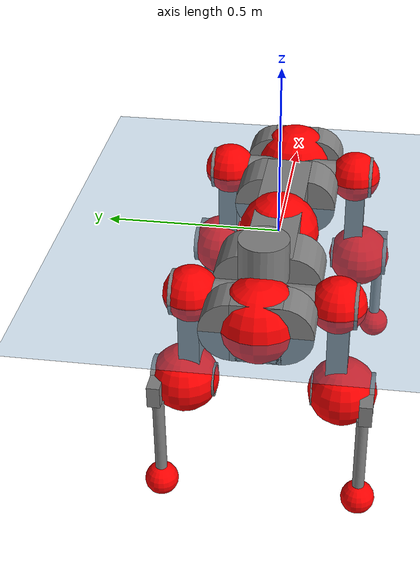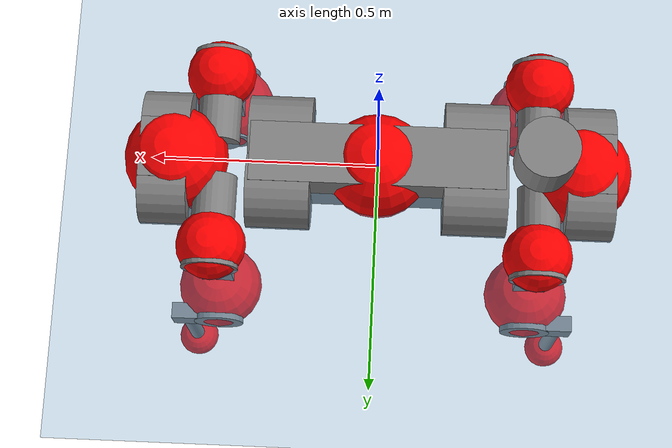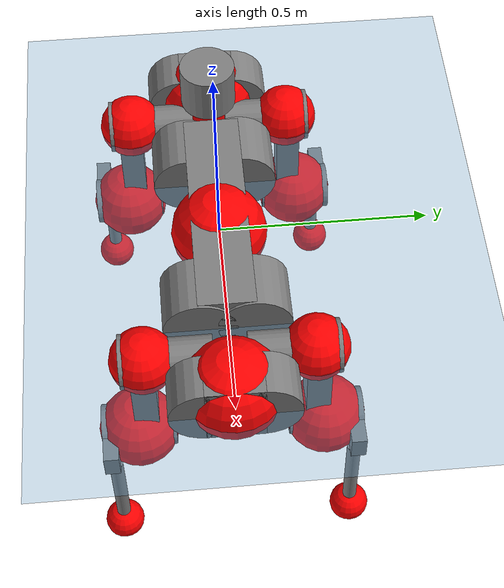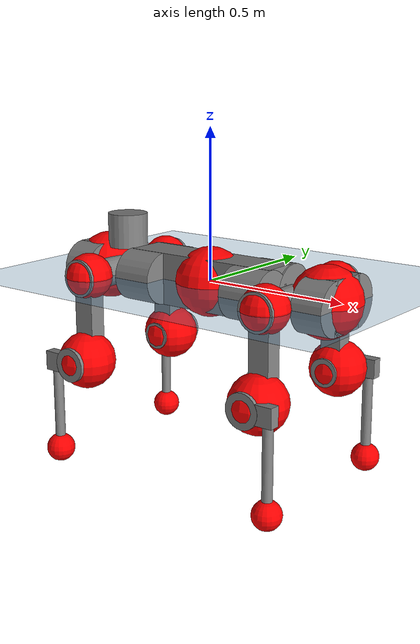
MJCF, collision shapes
<mujoco model="anymal_c">
  <compiler angle="radian" assetdir="assets" balanceinertia="true" inertiafromgeom="false"/>

  <option timestep="0.005" density="1.2" viscosity="2e-05"/>

  <size nkey="1"/>

  <visual>
    <quality shadowsize="8192"/>
    <map shadowclip="0.5"/>
  </visual>

  <default>
    <default class="/">
      <material specular="0" shininess="0.25"/>
      <geom contype="0" conaffinity="0" group="1" solref="-1000 -80"/>
      <site size="0.01 0.005 0.005" group="5"/>
      <general forcelimited="true" forcerange="-80 80" biastype="affine" gainprm="80" biasprm="0 -80 -2"/>
      <default class="anymal_c">
        <joint armature="0.01" damping="0.01" frictionloss="0.1"/>
        <default class="visual">
          <geom type="mesh" group="2"/>
          <default class="visual_zflip"/>
        </default>
        <default class="collision">
          <geom type="cylinder" group="3"/>
          <default class="foot">
            <geom size="0.03 0 0" type="sphere" condim="6" priority="1" friction="0.8 0.02 0.01" solimp="0.015 1 0.03"/>
          </default>
        </default>
      </default>
      <default class="reward_collision_sphere">
        <geom group="5" rgba="1 0 0 1"/>
      </default>
    </default>
  </default>

  <asset>
    <texture type="skybox" colorspace="auto" name="//unnamed_texture_0" builtin="gradient" rgb1="0.95 0.95 0.95" rgb2="0.95 0.95 0.95" width="100" height="600"/>
    <texture type="2d" colorspace="auto" name="texplane" builtin="checker" rgb1="0.345 0.575 0.748" rgb2="0.345 0.575 0.748" markrgb="1 1 1" width="512" height="512"/>
    <texture type="2d" colorspace="linear" name="base" file="base.png"/>
    <texture type="2d" colorspace="linear" name="top_shell" file="top_shell.png"/>
    <texture type="2d" colorspace="linear" name="bottom_shell" file="bottom_shell.png"/>
    <texture type="2d" colorspace="linear" name="remote" file="remote.png"/>
    <texture type="2d" colorspace="linear" name="hatch" file="hatch.png"/>
    <texture type="2d" colorspace="linear" name="handle" file="handle.png"/>
    <texture type="2d" colorspace="linear" name="face" file="face.png"/>
    <texture type="2d" colorspace="linear" name="battery" file="battery.png"/>
    <texture type="2d" colorspace="linear" name="lidar_cage" file="lidar_cage.png"/>
    <texture type="2d" colorspace="linear" name="depth_camera" file="depth_camera.png"/>
    <texture type="2d" colorspace="linear" name="wide_angle_camera" file="wide_angle_camera.png"/>
    <texture type="2d" colorspace="linear" name="lidar" file="lidar.png"/>
    <texture type="2d" colorspace="linear" name="drive" file="drive.png"/>
    <texture type="2d" colorspace="linear" name="hip_l" file="hip_l.png"/>
    <texture type="2d" colorspace="linear" name="shank_l" file="shank_l.png"/>
    <texture type="2d" colorspace="linear" name="foot" file="foot.png"/>
    <texture type="2d" colorspace="linear" name="thigh" file="thigh.png"/>
    <texture type="2d" colorspace="linear" name="shank_r" file="shank_r.png"/>
    <texture type="2d" colorspace="linear" name="hip_r" file="hip_r.png"/>
    <material name="MatPlane" class="/" texture="texplane" texuniform="true" texrepeat="2 2" specular="0.9" shininess="0.5"/>
    <material name="black_plastic" class="/" rgba="0.007 0.007 0.007 1"/>
    <material name="green" class="/" rgba="0.052 0.178 0.033 1"/>
    <material name="red" class="/" rgba="0.178 0.006 0.005 1"/>
    <material name="yellow" class="/" rgba="0.178 0.119 0.006 1"/>
    <material name="lwl" class="/" rgba="0.8 0.8 0.8 1"/>
    <material name="base" class="/" texture="base"/>
    <material name="top_shell" class="/" texture="top_shell"/>
    <material name="bottom_shell" class="/" texture="bottom_shell"/>
    <material name="hip_l" class="/" texture="hip_l"/>
    <material name="thigh" class="/" texture="thigh"/>
    <material name="shank_l" class="/" texture="shank_l"/>
    <material name="foot" class="/" texture="foot"/>
    <material name="hip_r" class="/" texture="hip_r"/>
    <material name="shank" class="/" texture="shank_r"/>
    <material name="hatch" class="/" texture="hatch"/>
    <material name="remote" class="/" texture="remote"/>
    <material name="handle" class="/" texture="handle"/>
    <material name="face" class="/" texture="face"/>
    <material name="depth_camera" class="/" texture="depth_camera"/>
    <material name="wide_angle_camera" class="/" texture="wide_angle_camera"/>
    <material name="battery" class="/" texture="battery"/>
    <material name="lidar_cage" class="/" texture="lidar_cage"/>
    <material name="lidar" class="/" texture="lidar"/>
    <material name="drive" class="/" texture="drive"/>
    <mesh name="base_0" class="/" file="base_0.obj"/>
    <mesh name="base_1" class="/" file="base_1.obj"/>
    <mesh name="base_2" class="/" file="base_2.obj"/>
    <mesh name="base_3" class="/" file="base_3.obj"/>
    <mesh name="base_4" class="/" file="base_4.obj"/>
    <mesh name="base_5" class="/" file="base_5.obj"/>
    <mesh name="top_shell" class="/" file="top_shell.obj"/>
    <mesh name="bottom_shell" class="/" file="bottom_shell.obj"/>
    <mesh name="remote" class="/" file="remote.obj"/>
    <mesh name="handle" class="/" file="handle.obj"/>
    <mesh name="face" class="/" file="face.obj"/>
    <mesh name="wide_angle_camera" class="/" file="wide_angle_camera.obj"/>
    <mesh name="depth_camera" class="/" file="depth_camera.obj"/>
    <mesh name="battery" class="/" file="battery.obj"/>
    <mesh name="lidar_cage" class="/" file="lidar_cage.obj"/>
    <mesh name="lidar" class="/" file="lidar.obj"/>
    <mesh name="drive" class="/" file="drive.obj"/>
    <mesh name="hip_l" class="/" file="hip_l.obj"/>
    <mesh name="thigh" class="/" file="thigh.obj"/>
    <mesh name="shank_l" class="/" file="shank_l.obj"/>
    <mesh name="foot" class="/" file="foot.obj"/>
    <mesh name="hip_r" class="/" file="hip_r.obj"/>
    <mesh name="hatch" class="/" file="hatch.obj"/>
    <mesh name="shank_r" class="/" file="shank_r.obj"/>
  </asset>

  <worldbody>
    <geom name="floor" class="/" size="100 100 0.125" type="plane" group="0" material="MatPlane"/>
    <light name="toplight_shadow" class="/" pos="0 0 5" dir="0.0990148 0.0990148 -0.990148" type="directional" ambient="0.04 0.04 0.04" diffuse="0.55 0.55 0.55" specular="0.12 0.12 0.12"/>
    <light name="toplight_fill" class="/" pos="0 0 5" dir="0.0990148 0.0990148 -0.990148" type="directional" castshadow="false" ambient="0.04 0.04 0.04" diffuse="0.3 0.3 0.3" specular="0.08 0.08 0.08"/>
    <body name="trunk" childclass="anymal_c" pos="0.000507242 -0.000216653 -0.000840379" quat="1 -3.81122e-05 -0.000149037 8.04232e-05">
      <inertial pos="0.000813111 -0.002214 0.048043" quat="0.502507 0.502344 0.498419 0.496704" mass="16.7121" diaginertia="0.605603 0.372762 0.217264"/>
      <joint name="//unnamed_joint_0" type="free" armature="0" damping="0" frictionloss="0"/>
      <geom name="//unnamed_geom_1" class="visual" material="green" mesh="base_0"/>
      <geom name="//unnamed_geom_2" class="visual" material="yellow" mesh="base_1"/>
      <geom name="//unnamed_geom_3" class="visual" material="red" mesh="base_2"/>
      <geom name="//unnamed_geom_4" class="visual" material="black_plastic" mesh="base_3"/>
      <geom name="//unnamed_geom_5" class="visual" material="lwl" mesh="base_4"/>
      <geom name="//unnamed_geom_6" class="visual" material="base" mesh="base_5"/>
      <geom name="trunk_1" class="collision" size="0.279091 0.0673669 0.0866146" type="box"/>
      <geom name="trunk_2" class="collision" size="0.0866146 0.0697728" pos="0.215302 0.0630235 0" quat="0.707107 0 0.707107 0"/>
      <geom name="trunk_3" class="collision" size="0.0866146 0.0697728" pos="-0.215302 0.0630235 0" quat="0.707107 0 0.707107 0"/>
      <geom name="trunk_4" class="collision" size="0.0866146 0.0697728" pos="0.215302 -0.0630235 0" quat="0.707107 0 0.707107 0"/>
      <geom name="trunk_5" class="collision" size="0.0866146 0.0697728" pos="-0.215302 -0.0630235 0" quat="0.707107 0 0.707107 0"/>
      <geom name="//unnamed_geom_12" class="visual" material="top_shell" mesh="top_shell"/>
      <geom name="//unnamed_geom_13" class="visual" material="bottom_shell" mesh="bottom_shell"/>
      <geom name="//unnamed_geom_14" class="visual" material="remote" mesh="remote"/>
      <geom name="//unnamed_geom_15" class="visual" material="handle" mesh="handle"/>
      <geom name="//unnamed_geom_16" class="visual" pos="0.410311 0 0" quat="1 0 0 0" material="face" mesh="face"/>
      <geom name="trunk_6" class="collision" size="0.0529311 0.0673669 0.0866146" pos="0.464755 0 0" type="box"/>
      <geom name="//unnamed_geom_18" class="collision" size="0.0866146 0.0529311" pos="0.464755 0.0630235 0" quat="0.707107 0 0.707107 0"/>
      <geom name="//unnamed_geom_19" class="collision" size="0.0866146 0.0529311" pos="0.464755 -0.0630235 0" quat="0.707107 0 0.707107 0"/>
      <geom name="//unnamed_geom_20" class="visual" pos="0.456985 0 -0.0291636" quat="0.965926 0 0.258819 0" material="depth_camera" mesh="depth_camera"/>
      <geom name="//unnamed_geom_21" class="visual" pos="0.507815 0 0.0149239" material="wide_angle_camera" mesh="wide_angle_camera"/>
      <geom name="//unnamed_geom_22" class="visual_zflip" pos="-0.410311 0 0" quat="0 0 0 1" material="face" mesh="face"/>
      <geom name="trunk_7" class="collision" size="0.0529311 0.0673669 0.0866146" pos="-0.464755 0 0" quat="0 0 0 1" type="box"/>
      <geom name="//unnamed_geom_24" class="collision" size="0.0866146 0.0529311" pos="-0.464755 -0.0630235 0" quat="0 -0.707107 0 0.707107"/>
      <geom name="//unnamed_geom_25" class="collision" size="0.0866146 0.0529311" pos="-0.464755 0.0630235 0" quat="0 -0.707107 0 0.707107"/>
      <geom name="//unnamed_geom_26" class="visual" pos="-0.456985 0 -0.0291636" quat="0 -0.258819 0 0.965926" material="depth_camera" mesh="depth_camera"/>
      <geom name="//unnamed_geom_27" class="visual_zflip" pos="-0.507815 0 0.0149239" quat="0 0 0 1" material="wide_angle_camera" mesh="wide_angle_camera"/>
      <geom name="//unnamed_geom_28" class="visual" material="battery" mesh="battery"/>
      <geom name="//unnamed_geom_29" class="visual" pos="0 0.0676648 0.0289072" quat="0.683013 -0.183013 0.183013 0.683013" material="depth_camera" mesh="depth_camera"/>
      <geom name="//unnamed_geom_30" class="visual" pos="0 -0.0676648 0.0289072" quat="0.683013 0.183013 0.183013 -0.683013" material="depth_camera" mesh="depth_camera"/>
      <geom name="//unnamed_geom_31" class="visual" pos="-0.360321 0 0.0732738" quat="1 0 0 0" material="lidar_cage" mesh="lidar_cage"/>
      <geom name="trunk_8" class="collision" size="0.0673669 0.057743" pos="-0.360321 0 0.133089"/>
      <geom name="//unnamed_geom_33" class="visual" pos="-0.360321 -3.51847e-05 0.141762" quat="0.707107 0 0 -0.707107" material="lidar" mesh="lidar"/>
      <geom name="//unnamed_geom_34" class="visual" pos="0.296869 0.0936692 -1.66614e-09" quat="0.258819 0.965926 0 0" material="drive" mesh="drive"/>
      <geom name="//unnamed_geom_35" class="visual" pos="0.296869 -0.0936692 1.66614e-09" quat="0.258819 -0.965926 0 0" material="drive" mesh="drive"/>
      <geom name="//unnamed_geom_36" class="visual" pos="-0.296869 0.0936692 1.66614e-09" quat="0 0 0.965926 -0.258819" material="drive" mesh="drive"/>
      <geom name="//unnamed_geom_37" class="visual" pos="-0.296869 -0.0936692 -1.66614e-09" quat="0 0 -0.965926 -0.258819" material="drive" mesh="drive"/>
      <geom name="//unnamed_geom_38" class="visual" pos="0.114828 0 0.0727754" quat="1 0 0 0" material="hatch" mesh="hatch"/>
      <geom name="//unnamed_geom_39" class="reward_collision_sphere" size="0.115486"/>
      <geom name="//unnamed_geom_40" class="reward_collision_sphere" size="0.115486" pos="0.445452 0 0"/>
      <geom name="//unnamed_geom_41" class="reward_collision_sphere" size="0.115486" pos="-0.445452 0 0"/>
      <site name="imu" pos="0.233802 0.0071948 0.0561634" size="0.00962384"/>
      <camera name="track" pos="0 -1.80067 0" quat="0.707107 0.707107 0 0" mode="trackcom"/>
      <camera name="ego_camera" pos="0.445452 0 -0.0398769" quat="-0.5 -0.5 0.5 0.5"/>
      <body name="LF_HIP" pos="0.297167 0.0945213 0.00115708" quat="0.258872 0.965912 -0.000203787 -0.000175893">
        <inertial pos="0.0582226 -0.0130589 -0.00875478" quat="-0.127996 0.710104 -0.134514 0.679173" mass="2.39981" diaginertia="0.00538353 0.0029079 0.00318313"/>
        <joint name="LF_HAA" pos="0 0 0" axis="0.999957 -0.00769708 -0.00519601" range="-0.730433 0.484874" armature="0.010777" damping="0" frictionloss="0.0982296"/>
        <geom name="//unnamed_geom_42" class="visual" pos="0 -9.80113e-05 1.60983e-05" quat="0.258819 -0.965926 0 0" material="hip_l" mesh="hip_l"/>
        <geom name="//unnamed_geom_43" class="visual" pos="0.0592946 -0.0707032 -0.0415349" quat="0.183013 -0.683013 0.683013 0.183013" material="drive" mesh="drive"/>
        <geom name="//unnamed_geom_44" class="collision" size="0.0481192 0.0673669" pos="0.0592946 -0.0107678 -0.00688375" quat="-0.353553 -0.612372 0.612372 -0.353553"/>
        <body name="LF_THIGH" pos="0.0597846 -0.0642454 -0.0415964" quat="0.182877 -0.682741 0.683216 0.183403">
          <inertial pos="0.0300506 5.07499e-05 -0.242747" quat="0.993687 -0.00310937 -0.0774215 0.0811321" mass="2.76319" diaginertia="0.0281444 0.0178133 0.00416399"/>
          <joint name="LF_HFE" pos="0 0 0" axis="0.999914 -0.0115435 -0.00618356" range="-3.12335 3.12868" armature="0.00952732" damping="0.0150338" frictionloss="0.0866618"/>
          <geom name="//unnamed_geom_45" class="visual" pos="0.00178184 2.80776e-06 0" quat="0.707107 0 0 -0.707107" material="thigh" mesh="thigh"/>
          <geom name="//unnamed_geom_46" class="collision" size="0.062555 0.0384954" pos="0.0395957 0 0" quat="0.5 0.5 -0.5 -0.5"/>
          <geom name="//unnamed_geom_47" class="collision" size="0.0360894 0.0288715 0.135998" pos="0.0296968 0 -0.140879" quat="0.707107 0 0 -0.707107" type="box"/>
          <geom name="//unnamed_geom_48" class="visual" pos="0.0992863 0 -0.284123" quat="1 0 0 0" material="drive" mesh="drive"/>
          <geom name="//unnamed_geom_49" class="collision" size="0.0481192 0.0673669" pos="0.0299938 0 -0.284123" quat="0.707107 0 0.707107 0"/>
          <geom name="//unnamed_geom_50" class="reward_collision_sphere" size="0.0769907" pos="0.0247473 0 0"/>
          <body name="LF_SHANK" pos="0.100996 -0.00213944 -0.286708" quat="1 -0.000480175 0.000596992 0.00036654">
            <inertial pos="0.00606982 -0.0552081 -0.0796685" quat="0.992537 -0.119747 -0.00165685 -0.0229865" mass="0.523214" diaginertia="0.00968751 0.00544006 0.00111366"/>
            <joint name="LF_KFE" pos="0 0 0" axis="0.999999 0.000815494 0.0013917" range="-3.1544 3.12052" armature="0.00947223" damping="0" frictionloss="0.0982269"/>
            <geom name="//unnamed_geom_51" class="visual" pos="0.000581019 0.00309802 0" quat="0.707107 0 0 -0.707107" material="shank_l" mesh="shank_l"/>
            <geom name="LF_kfe_act" class="collision" size="0.057743 0.0192477" pos="0.0197979 0 0" quat="0.5 0.5 -0.5 -0.5"/>
            <geom name="//unnamed_geom_53" class="collision" size="0.0553361 0.0324805 0.0182853" pos="0.0197979 -0.0517684 0" quat="0.5 0.5 -0.5 -0.5" type="box"/>
            <geom name="//unnamed_geom_54" class="visual" pos="0.012918 -0.0781862 -0.33693" quat="0.382683 0 0 -0.92388" material="foot" mesh="foot"/>
            <geom name="LF_calf" class="collision" size="0.0168417 0.135939" pos="0.0129181 -0.0791845 -0.168465" quat="0.707107 0 0 -0.707107"/>
            <geom name="LF_foot" class="foot" size="0.0320171" pos="0.0129181 -0.0791845 -0.314499" quat="0.707107 0 0 -0.707107"/>
            <geom name="//unnamed_geom_57" class="reward_collision_sphere" size="0.0962384" pos="-0.0494947 0 0"/>
            <geom name="//unnamed_geom_58" class="reward_collision_sphere" size="0.0481192" pos="0.0129181 -0.0791845 -0.314499"/>
            <site name="LF_foot" class="foot" pos="0.0129181 -0.0791845 -0.314499" quat="0.707107 0 0 -0.707107" size="0.00962384"/>
          </body>
        </body>
      </body>
      <body name="RF_HIP" pos="0.29716 -0.0934709 0.001016" quat="0.258817 -0.965926 2.64014e-07 -5.46427e-07">
        <inertial pos="0.0581701 0.0136634 -0.00780447" quat="0.13404 0.679116 0.128846 0.710094" mass="2.51685" diaginertia="0.00564181 0.00292292 0.0032496"/>
        <joint name="RF_HAA" pos="0 0 0" axis="0.999995 0.00311219 0.000581228" range="-0.536277 0.719438" armature="0.00869802" damping="0.0107662" frictionloss="0.0863624"/>
        <geom name="//unnamed_geom_59" class="visual" pos="0 9.80105e-05 1.60982e-05" quat="0.258819 0.965926 0 0" material="hip_r" mesh="hip_r"/>
        <geom name="//unnamed_geom_60" class="visual" pos="0.0592946 0.0707032 -0.0415349" quat="0.183013 0.683013 0.683013 -0.183013" material="drive" mesh="drive"/>
        <geom name="//unnamed_geom_61" class="collision" size="0.0481192 0.0673669" pos="0.0592946 0.0107678 -0.00688375" quat="-0.353553 0.612372 0.612372 0.353553"/>
        <body name="RF_THIGH" pos="0.0604213 0.0676462 -0.0417987" quat="0.183015 0.682986 0.683034 -0.183031">
          <inertial pos="0.03058 -0.000210167 -0.245143" quat="0.992042 -0.00896651 -0.0892665 0.0883341" mass="2.61386" diaginertia="0.0284465 0.0174852 0.00402244"/>
          <joint name="RF_HFE" pos="0 0 0" axis="0.99999 -0.0044137 0.000607552" stiffness="0.00550764" range="-3.09297 3.15313" armature="0.00981566" damping="0.00069948" frictionloss="0.108611"/>
          <geom name="//unnamed_geom_62" class="visual" pos="0.00178184 2.80776e-06 0" quat="0.707107 0 0 -0.707107" material="thigh" mesh="thigh"/>
          <geom name="//unnamed_geom_63" class="collision" size="0.062555 0.0384954" pos="0.0395957 0 0" quat="0.5 0.5 0.5 0.5"/>
          <geom name="//unnamed_geom_64" class="collision" size="0.0360894 0.0288715 0.135998" pos="0.0296968 0 -0.140879" quat="0.707107 0 0 0.707107" type="box"/>
          <geom name="//unnamed_geom_65" class="visual" pos="0.0992863 0 -0.284123" quat="1 0 0 0" material="drive" mesh="drive"/>
          <geom name="//unnamed_geom_66" class="collision" size="0.0481192 0.0673669" pos="0.0299938 0 -0.284123" quat="0.707107 0 0.707107 0"/>
          <geom name="//unnamed_geom_67" class="reward_collision_sphere" size="0.0769907" pos="0.0247473 0 0"/>
          <body name="RF_SHANK" pos="0.100652 -0.0018753 -0.285052" quat="1 0.000131201 -0.000102665 0.00016587">
            <inertial pos="0.00589908 0.0547174 -0.0778957" quat="0.992972 0.115591 -0.000886989 0.0253904" mass="0.524834" diaginertia="0.00935953 0.00535852 0.00110839"/>
            <joint name="RF_KFE" pos="0 0 0" axis="0.999999 -0.00110455 -0.00129945" range="-3.13201 3.14327" armature="0.0101313" damping="0.00959143" frictionloss="0.0846767"/>
            <geom name="//unnamed_geom_68" class="visual" pos="0.000581016 -0.00309802 0" quat="0.707107 0 0 0.707107" material="shank" mesh="shank_r"/>
            <geom name="RF_kfe_act" class="collision" size="0.057743 0.0192477" pos="0.0197979 0 0" quat="0.5 0.5 0.5 0.5"/>
            <geom name="//unnamed_geom_70" class="collision" size="0.0553361 0.0324805 0.0182853" pos="0.0197979 0.0517684 0" quat="0.5 0.5 0.5 0.5" type="box"/>
            <geom name="//unnamed_geom_71" class="visual" pos="0.0129182 0.0781862 -0.33693" quat="0.382683 0 0 0.92388" material="foot" mesh="foot"/>
            <geom name="RF_calf" class="collision" size="0.0168417 0.135939" pos="0.0129181 0.0791845 -0.168465" quat="0.707107 0 0 0.707107"/>
            <geom name="RF_foot" class="foot" size="0.0269478" pos="0.0129181 0.0791845 -0.314499" quat="0.707107 0 0 0.707107"/>
            <geom name="//unnamed_geom_74" class="reward_collision_sphere" size="0.0962384" pos="-0.0494947 0 0"/>
            <geom name="//unnamed_geom_75" class="reward_collision_sphere" size="0.0481192" pos="0.0129181 0.0791845 -0.314499"/>
            <site name="RF_foot" class="foot" pos="0.0129181 0.0791845 -0.314499" quat="0.707107 0 0 0.707107" size="0.00962384"/>
          </body>
        </body>
      </body>
      <body name="LH_HIP" pos="-0.298693 0.0936998 0.000189553" quat="0.000246705 0.000216121 0.965898 -0.258921">
        <inertial pos="0.0555783 0.0156589 -0.00782884" quat="0.135121 0.67983 0.128703 0.709232" mass="2.45777" diaginertia="0.00551117 0.00293049 0.00308679"/>
        <joint name="LH_HAA" pos="0 0 0" axis="0.999993 0.00162099 0.00343866" stiffness="0.00249569" range="-0.513443 0.672027" armature="0.00850607" damping="0.0117192" frictionloss="0.0946305"/>
        <geom name="//unnamed_geom_76" class="visual" pos="0 9.80105e-05 1.60982e-05" quat="-0.258819 -0.965926 0 0" material="hip_r" mesh="hip_r"/>
        <geom name="//unnamed_geom_77" class="visual" pos="0.0592946 0.0707032 -0.0415349" quat="0.183013 0.683013 0.683013 -0.183013" material="drive" mesh="drive"/>
        <geom name="//unnamed_geom_78" class="collision" size="0.0481192 0.0673669" pos="0.0592946 0.0107678 -0.00688375" quat="-0.353553 0.612372 0.612372 0.353553"/>
        <body name="LH_THIGH" pos="0.0578193 0.0630067 -0.0410405" quat="0.183046 0.682964 0.683078 -0.182916">
          <inertial pos="0.0306288 0.00143001 -0.244614" quat="0.992899 -0.00569469 -0.0781441 0.0895141" mass="2.73637" diaginertia="0.0288226 0.0176436 0.00406989"/>
          <joint name="LH_HFE" pos="0 0 0" axis="0.999957 -0.00925381 -0.000849942" range="-3.14396 3.13214" armature="0.00979376" damping="0.0117564" frictionloss="0.0913821"/>
          <geom name="//unnamed_geom_79" class="visual" pos="0.00178184 2.80776e-06 0" quat="0.707107 0 0 -0.707107" material="thigh" mesh="thigh"/>
          <geom name="//unnamed_geom_80" class="collision" size="0.062555 0.0384954" pos="0.0395957 0 0" quat="0.5 0.5 -0.5 -0.5"/>
          <geom name="//unnamed_geom_81" class="collision" size="0.0360894 0.0288715 0.135998" pos="0.0296968 0 -0.140879" quat="0.707107 0 0 -0.707107" type="box"/>
          <geom name="//unnamed_geom_82" class="visual" pos="0.0992863 0 -0.284123" quat="1 0 0 0" material="drive" mesh="drive"/>
          <geom name="//unnamed_geom_83" class="collision" size="0.0481192 0.0673669" pos="0.0299938 0 -0.284123" quat="0.707107 0 0.707107 0"/>
          <geom name="//unnamed_geom_84" class="reward_collision_sphere" size="0.0769907" pos="0.0247473 0 0"/>
          <body name="LH_SHANK" pos="0.0989956 -1.96044e-05 -0.283878" quat="1 -0.000138805 5.66804e-05 0.000229723">
            <inertial pos="0.00545034 0.0551107 -0.0801794" quat="0.991518 0.126579 -0.00726921 0.0285731" mass="0.523726" diaginertia="0.009703 0.0054693 0.00106512"/>
            <joint name="LH_KFE" pos="0 0 0" axis="0.999931 -0.00635311 -0.00987932" stiffness="0.000557851" range="-3.13404 3.14351" armature="0.00903467" damping="0.00931652" frictionloss="0.0989505"/>
            <geom name="//unnamed_geom_85" class="visual" pos="0.000581016 -0.00309802 0" quat="-0.707107 0 0 -0.707107" material="shank" mesh="shank_r"/>
            <geom name="LH_kfe_act" class="collision" size="0.057743 0.0192477" pos="0.0197979 0 0" quat="0.5 0.5 -0.5 -0.5"/>
            <geom name="//unnamed_geom_87" class="collision" size="0.0553361 0.0324805 0.0182853" pos="0.0197979 0.0517684 0" quat="0.5 0.5 -0.5 -0.5" type="box"/>
            <geom name="//unnamed_geom_88" class="visual" pos="0.0129182 0.0781862 -0.33693" quat="-0.382683 0 0 -0.92388" material="foot" mesh="foot"/>
            <geom name="LH_calf" class="collision" size="0.0168417 0.135939" pos="0.0129181 0.0791845 -0.168465" quat="0.707107 0 0 -0.707107"/>
            <geom name="LH_foot" class="foot" size="0.0343062" pos="0.0129181 0.0791845 -0.314499" quat="0.707107 0 0 -0.707107"/>
            <geom name="//unnamed_geom_91" class="reward_collision_sphere" size="0.0962384" pos="-0.0494947 0 0"/>
            <geom name="//unnamed_geom_92" class="reward_collision_sphere" size="0.0481192" pos="0.0129181 0.0791845 -0.314499"/>
            <site name="LH_foot" class="foot" pos="0.0129181 0.0791845 -0.314499" quat="0.707107 0 0 -0.707107" size="0.00962384"/>
          </body>
        </body>
      </body>
      <body name="RH_HIP" pos="-0.296716 -0.0965101 0.000976104" quat="-0.000566166 0.000462554 -0.965893 -0.258939">
        <inertial pos="0.0538524 -0.0135795 -0.0066465" quat="-0.127671 0.711499 -0.139105 0.676845" mass="2.49448" diaginertia="0.00557743 0.00292018 0.00315783"/>
        <joint name="RH_HAA" pos="0 0 0" axis="1 1.23375e-05 -0.000136259" range="-0.759673 0.542701" armature="0.00946913" damping="0.00630116" frictionloss="0.0963843"/>
        <geom name="//unnamed_geom_93" class="visual" pos="0 -9.80113e-05 1.60983e-05" quat="-0.258819 0.965926 0 0" material="hip_l" mesh="hip_l"/>
        <geom name="//unnamed_geom_94" class="visual" pos="0.0592946 -0.0707032 -0.0415349" quat="-0.183013 0.683013 -0.683013 -0.183013" material="drive" mesh="drive"/>
        <geom name="//unnamed_geom_95" class="collision" size="0.0481192 0.0673669" pos="0.0592946 -0.0107678 -0.00688375" quat="0.353553 0.612372 -0.612372 0.353553"/>
        <body name="RH_THIGH" pos="0.0597599 -0.0652402 -0.0404992" quat="-0.182915 0.683042 -0.683003 -0.183036">
          <inertial pos="0.0317864 0.000815928 -0.244982" quat="0.993144 -0.00515873 -0.0812187 0.0839181" mass="2.56909" diaginertia="0.0271986 0.0171708 0.00395465"/>
          <joint name="RH_HFE" pos="0 0 0" axis="0.999983 0.00195758 0.00552285" range="-3.13039 3.14109" armature="0.0100407" damping="0.0126481" frictionloss="0.095752"/>
          <geom name="//unnamed_geom_96" class="visual" pos="0.00178184 2.80776e-06 0" quat="0.707107 0 0 -0.707107" material="thigh" mesh="thigh"/>
          <geom name="//unnamed_geom_97" class="collision" size="0.062555 0.0384954" pos="0.0395957 0 0" quat="0.5 0.5 0.5 0.5"/>
          <geom name="//unnamed_geom_98" class="collision" size="0.0360894 0.0288715 0.135998" pos="0.0296968 0 -0.140879" quat="0.707107 0 0 0.707107" type="box"/>
          <geom name="//unnamed_geom_99" class="visual" pos="0.0992863 0 -0.284123" quat="1 0 0 0" material="drive" mesh="drive"/>
          <geom name="//unnamed_geom_100" class="collision" size="0.0481192 0.0673669" pos="0.0299938 0 -0.284123" quat="0.707107 0 0.707107 0"/>
          <geom name="//unnamed_geom_101" class="reward_collision_sphere" size="0.0769907" pos="0.0247473 0 0"/>
          <body name="RH_SHANK" pos="0.0972323 0.00116927 -0.284882" quat="1 -4.30405e-05 3.25641e-05 -0.000276016">
            <inertial pos="0.00644172 -0.0550453 -0.0799426" quat="0.992321 -0.121641 -0.00639929 -0.0214623" mass="0.529955" diaginertia="0.00973161 0.00561736 0.00111387"/>
            <joint name="RH_KFE" pos="0 0 0" axis="0.999997 -0.00210585 0.000823264" range="-3.13108 3.15678" armature="0.00846075" damping="0.00234901" frictionloss="0.0958639"/>
            <geom name="//unnamed_geom_102" class="visual" pos="0.000581019 0.00309802 0" quat="0.707107 0 0 -0.707107" material="shank_l" mesh="shank_l"/>
            <geom name="RH_kfe_act" class="collision" size="0.057743 0.0192477" pos="0.0197979 0 0" quat="0.5 0.5 0.5 0.5"/>
            <geom name="//unnamed_geom_104" class="collision" size="0.0553361 0.0324805 0.0182853" pos="0.0197979 -0.0517684 0" quat="0.5 0.5 0.5 0.5" type="box"/>
            <geom name="//unnamed_geom_105" class="visual" pos="0.012918 -0.0781862 -0.33693" quat="0.382683 0 0 -0.92388" material="foot" mesh="foot"/>
            <geom name="RH_calf" class="collision" size="0.0168417 0.135939" pos="0.0129181 -0.0791845 -0.168465" quat="0.707107 0 0 0.707107"/>
            <geom name="RH_foot" class="foot" size="0.0248184" pos="0.0129181 -0.0791845 -0.314499" quat="0.707107 0 0 0.707107"/>
            <geom name="//unnamed_geom_108" class="reward_collision_sphere" size="0.0962384" pos="-0.0494947 0 0"/>
            <geom name="//unnamed_geom_109" class="reward_collision_sphere" size="0.0481192" pos="0.0129181 -0.0791845 -0.314499"/>
            <site name="RH_foot" class="foot" pos="0.0129181 -0.0791845 -0.314499" quat="0.707107 0 0 0.707107" size="0.00962384"/>
          </body>
        </body>
      </body>
    </body>
  </worldbody>

  <contact>
    <pair class="/" geom1="floor" geom2="LF_foot" name="//unnamed_contact_0"/>
    <pair class="/" geom1="floor" geom2="RF_foot" name="//unnamed_contact_1"/>
    <pair class="/" geom1="floor" geom2="LH_foot" name="//unnamed_contact_2"/>
    <pair class="/" geom1="floor" geom2="RH_foot" name="//unnamed_contact_3"/>
  </contact>

  <actuator>
    <general name="LF_HAA" class="/" joint="LF_HAA" forcerange="-77.7793 77.7793" gainprm="83.0382" biasprm="0 -83.0382 -1.88842"/>
    <general name="LF_HFE" class="/" joint="LF_HFE" forcerange="-77.6173 77.6173" gainprm="83.0382" biasprm="0 -83.0382 -1.88842"/>
    <general name="LF_KFE" class="/" joint="LF_KFE" forcerange="-78.1979 78.1979" gainprm="83.0382" biasprm="0 -83.0382 -1.88842"/>
    <general name="RF_HAA" class="/" joint="RF_HAA" forcerange="-76.8527 76.8527" gainprm="83.0382" biasprm="0 -83.0382 -1.88842"/>
    <general name="RF_HFE" class="/" joint="RF_HFE" forcerange="-77.267 77.267" gainprm="83.0382" biasprm="0 -83.0382 -1.88842"/>
    <general name="RF_KFE" class="/" joint="RF_KFE" forcerange="-72.0645 72.0645" gainprm="83.0382" biasprm="0 -83.0382 -1.88842"/>
    <general name="LH_HAA" class="/" joint="LH_HAA" forcerange="-77.4261 77.4261" gainprm="83.0382" biasprm="0 -83.0382 -1.88842"/>
    <general name="LH_HFE" class="/" joint="LH_HFE" forcerange="-72.2288 72.2288" gainprm="83.0382" biasprm="0 -83.0382 -1.88842"/>
    <general name="LH_KFE" class="/" joint="LH_KFE" forcerange="-77.7842 77.7842" gainprm="83.0382" biasprm="0 -83.0382 -1.88842"/>
    <general name="RH_HAA" class="/" joint="RH_HAA" forcerange="-80.2335 80.2335" gainprm="83.0382" biasprm="0 -83.0382 -1.88842"/>
    <general name="RH_HFE" class="/" joint="RH_HFE" forcerange="-70.7337 70.7337" gainprm="83.0382" biasprm="0 -83.0382 -1.88842"/>
    <general name="RH_KFE" class="/" joint="RH_KFE" forcerange="-82.1252 82.1252" gainprm="83.0382" biasprm="0 -83.0382 -1.88842"/>
  </actuator>

  <sensor>
    <gyro site="imu" name="imu_angular_velocity"/>
    <velocimeter site="imu" name="imu_linear_velocity"/>
    <framelinvel objtype="site" objname="LF_foot" name="LF_foot_global_linear_velocity"/>
    <framelinvel objtype="site" objname="RF_foot" name="RF_foot_global_linear_velocity"/>
    <framelinvel objtype="site" objname="LH_foot" name="LH_foot_global_linear_velocity"/>
    <framelinvel objtype="site" objname="RH_foot" name="RH_foot_global_linear_velocity"/>
  </sensor>

  <keyframe>
    <key name="home" qpos="0 0 0.55 1 0 0 0 0 0.4 -0.8 0 -0.4 0.8 0 -0.4 0.8 0 0.4 -0.8"/>
  </keyframe>
</mujoco>
